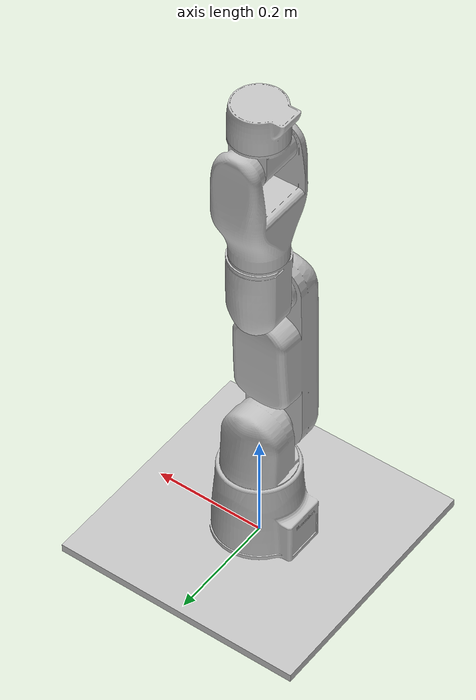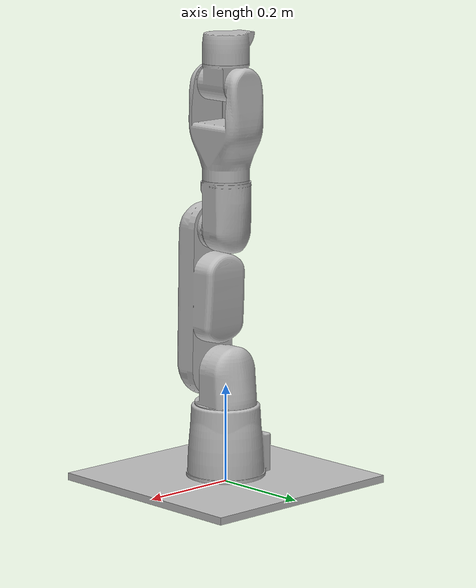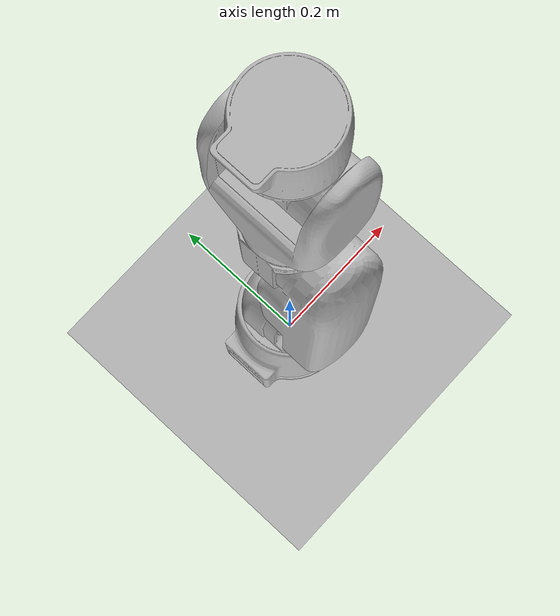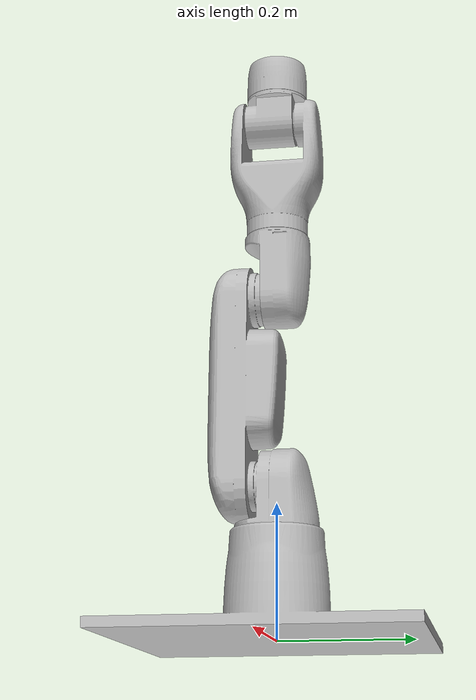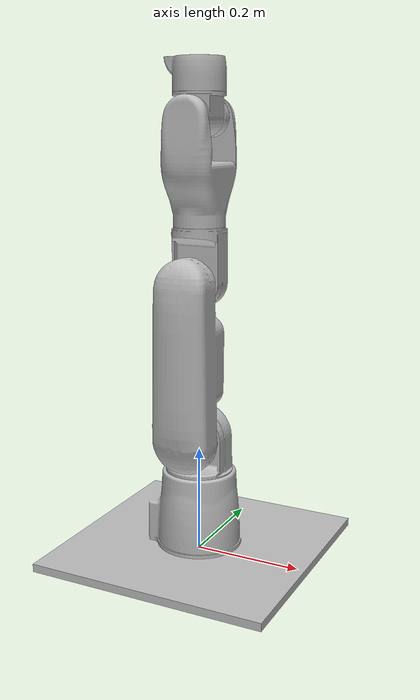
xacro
<?xml version="1.0"?>
<robot xmlns:xacro="http://ros.org/wiki/xacro"
       name="omni_6_robot" >

  <!-- common stuff -->
  <xacro:include filename="$(find neo_description)/urdf/common.gazebo.xacro" />

  <!-- omni_6 -->
  <xacro:include filename="$(find neo_description)/urdf/omni_6/omni_6.urdf.xacro" />

  <!-- arm -->
  <xacro:omni_6_robot joint_limited="True"/>

  <link name="base_footprint" />

  <joint name="world_joint" type="fixed">
    <parent link="base_footprint" />
    <child link = "base1_link" />
    <origin xyz="0.0 0.0 0.0" rpy="0.0 0.0 -1.57" />
  </joint>

</robot>

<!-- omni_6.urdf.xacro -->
<robot xmlns:xacro="http://ros.org/wiki/xacro" name="omni_6">

  <xacro:include filename="$(find neo_description)/urdf/omni_6/omni_6.transmission.xacro" />
  <xacro:include filename="$(find neo_description)/urdf/omni_6/omni_6.gazebo.xacro" />

  <xacro:macro name="omni_6_robot" params="joint_limited
     first_lower_limit:=${-5.0*pi/9.0}      first_upper_limit:=${5.0*pi/9.0}
     second_lower_limit:=${-pi/2.0}         second_upper_limit:=${pi/2.0}
     third_lower_limit:=${-pi/2.0}          third_upper_limit:=${pi/2.0}
     fourth_lower_limit:=${-8.0*pi/9.0}     fourth_upper_limit:=${8.0*pi/9.0}
     fifth_lower_limit:=${-pi/2.0}          fifth_upper_limit:=${pi/2.0}
     sixth_lower_limit:=${-8.0*pi/9.0}      sixth_upper_limit:=${8.0*pi/9.0}">

    <link name="base1_link" >
      <visual>
        <origin xyz="0 0 0" rpy="0 0 0" />
        <geometry>
          <mesh filename="package://neo_description/meshes/omni_6/base_link.STL" />
        </geometry>
        <material name="">
          <color rgba="0.75294 0.75294 0.75294 1" />
        </material>
      </visual>
      <collision>
        <origin xyz="0 0 0" rpy="0 0 0" />
        <geometry>
          <mesh filename="package://neo_description/meshes/omni_6/base_link.STL" />
        </geometry>
      </collision>
      <inertial>
        <origin xyz="1.5235E-07 -0.00012739 0.0084163" rpy="0 0 0" />
        <mass value="23.926" />
        <inertia ixx="0.0022735" ixy="1.8581E-07" ixz="-3.3985E-07"
                                 iyy="0.0017093"   iyz="8.6036E-05"
                                                   izz="0.00056414" />
      </inertial>
    </link>

    <joint name="first_joint" type="revolute">
      <parent link="base1_link" />
      <child link = "first_link" />
      <origin xyz="0 0 0.1565" rpy="-5.8488E-31 0 0" />
      <axis xyz="0 0 1" />
      <xacro:unless value="${joint_limited}">
        <limit lower="${-2.0 * pi}" upper="${2.0 * pi}" effort="150.0" velocity="3.14"/>
      </xacro:unless>
      <xacro:if value="${joint_limited}">
        <limit lower="${first_lower_limit}" upper="${first_upper_limit}" effort="150.0" velocity="3.14"/>
      </xacro:if>
      <dynamics damping="0.0" friction="0.0"/>
    </joint>

    <link name="first_link">
      <visual>
        <origin xyz="0 0 0" rpy="0 0 0" />
        <geometry>
          <mesh filename="package://neo_description/meshes/omni_6/first_link.STL" />
        </geometry>
        <material name="">
          <color rgba="0.75294 0.75294 0.75294 1" />
        </material>
      </visual>
      <collision>
        <origin xyz="0 0 0" rpy="0 0 0" />
        <geometry>
          <mesh filename="package://neo_description/meshes/omni_6/first_link.STL" />
        </geometry>
      </collision>
      <inertial>
        <origin xyz="0.00323 -1.2865E-05 0.046584" rpy="0 0 0" />
        <mass value="0.77157" />
        <inertia ixx="0.00025747" ixy="-3.6897E-07" ixz="-6.1643E-05"
        			  iyy="0.00039767"  iyz="1.8067E-07"
        					    izz="0.00014021" />
      </inertial>
    </link>

    <joint name="second_joint" type="revolute">
      <parent link="first_link" />
      <child link = "second_link" />
      <origin xyz="0.038 0 0.07" rpy="1.5708 5.8488E-31 -1.5708" />
      <axis xyz="0 0 1" />
      <xacro:unless value="${joint_limited}">
        <limit lower="${-2.0 * pi}" upper="${2.0 * pi}" effort="150.0" velocity="3.14"/>
      </xacro:unless>
      <xacro:if value="${joint_limited}">
        <limit lower="${second_lower_limit}" upper="${second_upper_limit}" effort="150.0" velocity="3.14"/>
      </xacro:if>
      <dynamics damping="0.0" friction="0.0"/>
    </joint>

    <link name="second_link">
      <visual>
        <origin xyz="0 0 0" rpy="0 0 0" />
        <geometry>
          <mesh filename="package://neo_description/meshes/omni_6/second_link.STL" />
        </geometry>
        <material name="">
          <color rgba="0.75294 0.75294 0.75294 1" />
        </material>
      </visual>
      <collision>
        <origin xyz="0 0 0" rpy="0 0 0" />
        <geometry>
          <mesh filename="package://neo_description/meshes/omni_6/second_link.STL" />
        </geometry>
      </collision>
      <inertial>
        <origin xyz="-2.3416E-06 0.1621 -0.0084837" rpy="0 0 0" />
        <mass value="1.3093" />
        <inertia ixx="0.0039407" ixy="-6.5511E-08" ixz="-5.4476E-08"
        			 iyy="0.00038754"  iyz="-0.00070889"
        					   izz="0.0035532" />
      </inertial>
    </link>

    <joint name="third_joint" type="revolute">
      <parent link="second_link" />
      <child link = "third_link" />
      <origin xyz="0 0.29 0.036" rpy="-3.1416 -4.7321E-17 -2.844E-33" />
      <axis xyz="0 0 -1" />
      <xacro:unless value="${joint_limited}">
        <limit lower="${-2.0 * pi}" upper="${2.0 * pi}" effort="150.0" velocity="3.14"/>
      </xacro:unless>
      <xacro:if value="${joint_limited}">
        <limit lower="${third_lower_limit}" upper="${third_upper_limit}" effort="150.0" velocity="3.14"/>
      </xacro:if>
      <dynamics damping="0.0" friction="0.0"/>
    </joint>

    <link name="third_link">
      <visual>
        <origin xyz="0 0 0" rpy="0 0 0" />
        <geometry>
          <mesh filename="package://neo_description/meshes/omni_6/third_link.STL" />
        </geometry>
        <material name="">
          <color rgba="0.75294 0.75294 0.75294 1" />
        </material>
      </visual>
      <collision>
        <origin xyz="0 0 0" rpy="0 0 0" />
        <geometry>
          <mesh filename="package://neo_description/meshes/omni_6/third_link.STL" />
        </geometry>
      </collision>
      <inertial>
        <origin xyz="3.4132E-06 -0.058377 -0.0040217" rpy="0 0 0" />
        <mass value="0.53063" />
        <inertia ixx="0.00037624" ixy="-6.4619E-08" ixz="5.6136E-08"
        			  iyy="4.9631E-05"  iyz="4.3789E-05"
        					    izz="0.00032661" />
      </inertial>
    </link>

    <joint name="fourth_joint" type="revolute">
      <parent link="third_link" />
      <child link = "fourth_link" />
      <origin xyz="0 -0.119 -0.0025" rpy="1.5708 -1.5708 0" />
      <axis xyz="0 0 1" />
      <xacro:unless value="${joint_limited}">
        <limit lower="${-2.0 * pi}" upper="${2.0 * pi}" effort="28.0" velocity="3.14"/>
      </xacro:unless>
      <xacro:if value="${joint_limited}">
        <limit lower="${fourth_lower_limit}" upper="${fourth_upper_limit}" effort="28.0" velocity="3.14"/>
      </xacro:if>
      <dynamics damping="0.0" friction="0.0"/>
    </joint>

    <link name="fourth_link">
      <visual>
        <origin xyz="0 0 0" rpy="0 0 0" />
        <geometry>
          <mesh filename="package://neo_description/meshes/omni_6/fourth_link.STL" />
        </geometry>
        <material name="">
          <color rgba="0.75294 0.75294 0.75294 1" />
        </material>
      </visual>
      <collision>
        <origin xyz="0 0 0" rpy="0 0 0" />
        <geometry>
          <mesh filename="package://neo_description/meshes/omni_6/fourth_link.STL" />
        </geometry>
      </collision>
      <inertial>
        <origin xyz="-0.002865 5.6603E-05 0.081013" rpy="0 0 0" />
        <mass value="0.826" />
        <inertia ixx="0.0015917" ixy="9.1789E-07" ixz="8.0847E-05"
        			 iyy="0.002298"   iyz="-1.3278E-07"
        					  izz="0.00070624" />
      </inertial>
    </link>

    <joint name="fifth_joint" type="revolute">
      <parent link="fourth_link" />
      <child link = "fifth_link" />
      <origin xyz="-0.0285 0 0.171" rpy="1.5708 -1.1783E-16 -1.5708" />
      <axis xyz="0 0 1" />
      <xacro:unless value="${joint_limited}">
        <limit lower="${-2.0 * pi}" upper="${2.0 * pi}" effort="150.0" velocity="3.14"/>
      </xacro:unless>
      <xacro:if value="${joint_limited}">
        <limit lower="${fifth_lower_limit}" upper="${fifth_upper_limit}" effort="150.0" velocity="3.14"/>
      </xacro:if>
      <dynamics damping="0.0" friction="0.0"/>
    </joint>

    <link name="fifth_link">
      <visual>
        <origin xyz="0 0 0" rpy="0 0 0" />
        <geometry>
          <mesh filename="package://neo_description/meshes/omni_6/fifth_link.STL" />
        </geometry>
        <material name="">
          <color rgba="0.75294 0.75294 0.75294 1" />
        </material>
      </visual>
      <collision>
        <origin xyz="0 0 0" rpy="0 0 0" />
        <geometry>
          <mesh filename="package://neo_description/meshes/omni_6/fifth_link.STL" />
        </geometry>
      </collision>
      <inertial>
        <origin xyz="5.7025E-10 0.020944 -0.028635" rpy="0 0 0" />
        <mass value="0.26325" />
        <inertia ixx="0.00012241" ixy="2.6177E-12" ixz="1.3273E-14"
        			  iyy="3.147E-09"  iyz="-6.2065E-07"
        					   izz="0.0001224" />
      </inertial>
    </link>

    <joint name="sixth_joint" type="revolute">
      <parent link="fifth_link" />
      <child link = "sixth_link" />
      <origin xyz="0 0.0605 -0.0285" rpy="1.5708 1.5708 3.1416" />
      <axis xyz="0 0 1" />
      <xacro:unless value="${joint_limited}">
        <limit lower="${-2.0 * pi}" upper="${2.0 * pi}" effort="150.0" velocity="3.14"/>
      </xacro:unless>
      <xacro:if value="${joint_limited}">
        <limit lower="${sixth_lower_limit}" upper="${sixth_upper_limit}" effort="28.0" velocity="3.14"/>
      </xacro:if>
      <dynamics damping="0.0" friction="0.0"/>
    </joint>

    <link name="sixth_link">
      <visual>
        <origin xyz="0 0 0" rpy="0 0 0" />
        <geometry>
          <mesh filename="package://neo_description/meshes/omni_6/sixth_link.STL" />
        </geometry>
        <material name="">
          <color rgba="0.75294 0.75294 0.75294 1" />
        </material>
      </visual>
      <collision>
        <origin xyz="0 0 0" rpy="0 0 0" />
        <geometry>
          <mesh filename="package://neo_description/meshes/omni_6/sixth_link.STL" />
        </geometry>
      </collision>
      <inertial>
        <origin xyz="7.7719E-07 -0.0012959 0.022061" rpy="0 0 0" />
        <mass value="0.26299" />
        <inertia ixx="3.0035E-05" ixy="8.5988E-10" ixz="-5.3613E-10"
        			  iyy="2.8523E-05" iyz="4.2602E-06"
        					   izz="1.5122E-06" />
      </inertial>
    </link>

    <xacro:omni_6_transmission/>
    <xacro:omni_6_gazebo/>

  </xacro:macro>
</robot>
